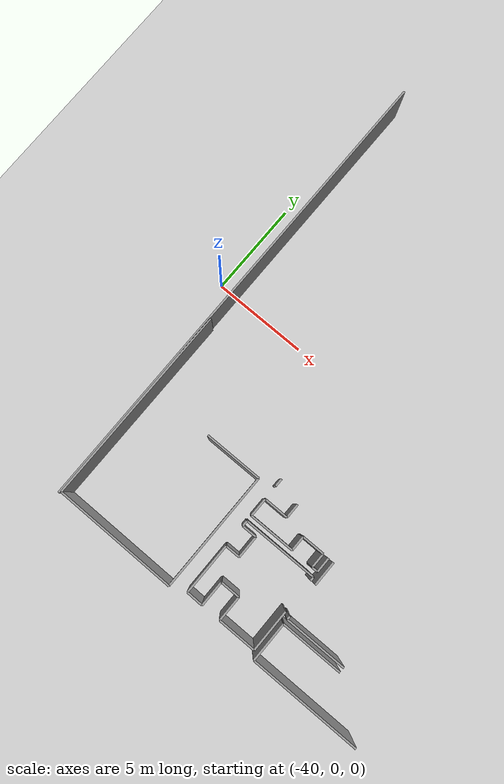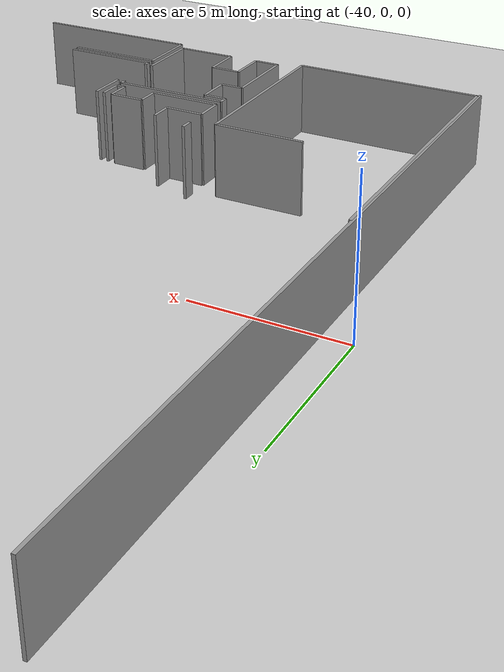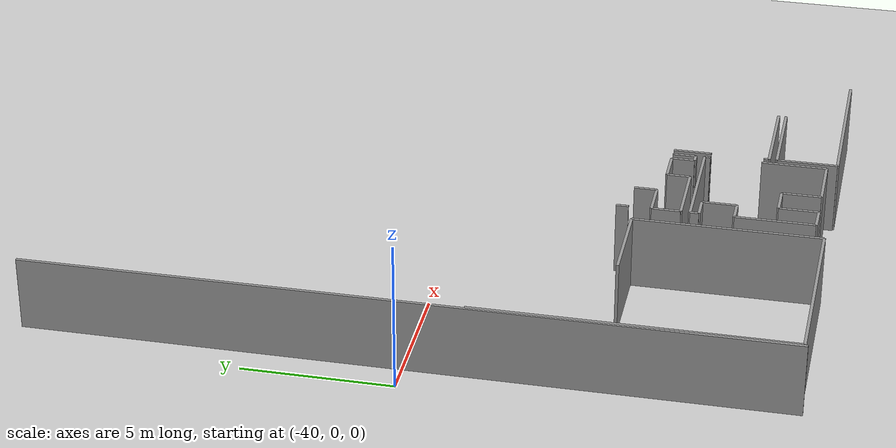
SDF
<sdf version="1.6">
 <world name="default">
  <model name="ground_plane">
   <static>1</static>
   <link name="link">
    <collision name="collision">
     <geometry><plane><normal>0 0 1</normal><size>100 100</size></plane></geometry>
     <surface><friction><ode><mu>100</mu><mu2>50</mu2></ode></friction></surface>
    </collision>
    <visual name="visual">
     <cast_shadows>0</cast_shadows>
     <geometry><plane><normal>0 0 1</normal><size>100 100</size></plane></geometry>
     <material>
      <script><uri>file://media/materials/scripts/gazebo.material</uri><name>Gazebo/Grey</name></script>
     </material>
    </visual>
   </link>
  </model>
  <model name="50052753">
   <static>1</static>
   <link name="Wall_9">
    <collision name="Wall_9_Collision">
     <geometry><box><size>10.4648522481 0.1 2.5</size></box></geometry>
     <pose>5.23242612407 0 1.25 0 0 0</pose>
    </collision>
    <visual name="Wall_9_Visual">
     <pose>5.23242612407 0 1.25 0 0 0</pose>
     <geometry><box><size>10.4648522481 0.1 2.5</size></box></geometry>
     <material>
      <script><uri>file://media/materials/scripts/gazebo.material</uri><name>Gazebo/Grey</name></script>
      <ambient>1 1 1 1</ambient>
     </material>
    </visual>
    <pose>0.0715450042179 -24.9756759671 0 0 0 1.57079632679</pose>
   </link>
   <link name="Wall_15">
    <collision name="Wall_15_Collision">
     <geometry><box><size>3.03102186309 0.1 2.5</size></box></geometry>
     <pose>1.51551093154 0 1.25 0 0 0</pose>
    </collision>
    <visual name="Wall_15_Visual">
     <pose>1.51551093154 0 1.25 0 0 0</pose>
     <geometry><box><size>3.03102186309 0.1 2.5</size></box></geometry>
     <material>
      <script><uri>file://media/materials/scripts/gazebo.material</uri><name>Gazebo/Grey</name></script>
      <ambient>1 1 1 1</ambient>
     </material>
    </visual>
    <pose>3.49581068482 -18.7504994831 0 0 0 0.0</pose>
   </link>
   <link name="Wall_16">
    <collision name="Wall_16_Collision">
     <geometry><box><size>6.25435263822 0.1 2.5</size></box></geometry>
     <pose>3.12717631911 0 1.25 0 0 0</pose>
    </collision>
    <visual name="Wall_16_Visual">
     <pose>3.12717631911 0 1.25 0 0 0</pose>
     <geometry><box><size>6.25435263822 0.1 2.5</size></box></geometry>
     <material>
      <script><uri>file://media/materials/scripts/gazebo.material</uri><name>Gazebo/Grey</name></script>
      <ambient>1 1 1 1</ambient>
     </material>
    </visual>
    <pose>6.5268325479 -18.7504994831 0 0 0 -1.57079632679</pose>
   </link>
   <link name="Wall_17">
    <collision name="Wall_17_Collision">
     <geometry><box><size>6.45535347751 0.1 2.5</size></box></geometry>
     <pose>3.22767673876 0 1.25 0 0 0</pose>
    </collision>
    <visual name="Wall_17_Visual">
     <pose>3.22767673876 0 1.25 0 0 0</pose>
     <geometry><box><size>6.45535347751 0.1 2.5</size></box></geometry>
     <material>
      <script><uri>file://media/materials/scripts/gazebo.material</uri><name>Gazebo/Grey</name></script>
      <ambient>1 1 1 1</ambient>
     </material>
    </visual>
    <pose>6.5268325479 -25.0048521213 0 0 0 3.13707295476</pose>
   </link>
   <link name="Wall_52">
    <collision name="Wall_52_Collision">
     <geometry><box><size>0.183429212942 0.1 2.5</size></box></geometry>
     <pose>0.0917146064708 0 1.25 0 0 0</pose>
    </collision>
    <visual name="Wall_52_Visual">
     <pose>0.0917146064708 0 1.25 0 0 0</pose>
     <geometry><box><size>0.183429212942 0.1 2.5</size></box></geometry>
     <material>
      <script><uri>file://media/materials/scripts/gazebo.material</uri><name>Gazebo/Grey</name></script>
      <ambient>1 1 1 1</ambient>
     </material>
    </visual>
    <pose>11.4942630801 -22.7227694513 0 0 0 1.57079632679</pose>
   </link>
   <link name="Wall_53">
    <collision name="Wall_53_Collision">
     <geometry><box><size>1.2837507849 0.1 2.5</size></box></geometry>
     <pose>0.641875392451 0 1.25 0 0 0</pose>
    </collision>
    <visual name="Wall_53_Visual">
     <pose>0.641875392451 0 1.25 0 0 0</pose>
     <geometry><box><size>1.2837507849 0.1 2.5</size></box></geometry>
     <material>
      <script><uri>file://media/materials/scripts/gazebo.material</uri><name>Gazebo/Grey</name></script>
      <ambient>1 1 1 1</ambient>
     </material>
    </visual>
    <pose>11.4942630801 -20.761243919 0 0 0 1.57079632679</pose>
   </link>
   <link name="Wall_60">
    <collision name="Wall_60_Collision">
     <geometry><box><size>3.24172783536 0.1 2.5</size></box></geometry>
     <pose>1.62086391768 0 1.25 0 0 0</pose>
    </collision>
    <visual name="Wall_60_Visual">
     <pose>1.62086391768 0 1.25 0 0 0</pose>
     <geometry><box><size>3.24172783536 0.1 2.5</size></box></geometry>
     <material>
      <script><uri>file://media/materials/scripts/gazebo.material</uri><name>Gazebo/Grey</name></script>
      <ambient>1 1 1 1</ambient>
     </material>
    </visual>
    <pose>14.7359875177 -22.7274630065 0 0 0 3.14014479704</pose>
   </link>
   <link name="Wall_68">
    <collision name="Wall_68_Collision">
     <geometry><box><size>5.79590645871 0.1 2.5</size></box></geometry>
     <pose>2.89795322936 0 1.25 0 0 0</pose>
    </collision>
    <visual name="Wall_68_Visual">
     <pose>2.89795322936 0 1.25 0 0 0</pose>
     <geometry><box><size>5.79590645871 0.1 2.5</size></box></geometry>
     <material>
      <script><uri>file://media/materials/scripts/gazebo.material</uri><name>Gazebo/Grey</name></script>
      <ambient>1 1 1 1</ambient>
     </material>
    </visual>
    <pose>11.4904574948 -25.0337745698 0 0 0 0.0</pose>
   </link>
   <link name="Wall_75">
    <collision name="Wall_75_Collision">
     <geometry><box><size>3.23119565148 0.1 2.5</size></box></geometry>
     <pose>1.61559782574 0 1.25 0 0 0</pose>
    </collision>
    <visual name="Wall_75_Visual">
     <pose>1.61559782574 0 1.25 0 0 0</pose>
     <geometry><box><size>3.23119565148 0.1 2.5</size></box></geometry>
     <material>
      <script><uri>file://media/materials/scripts/gazebo.material</uri><name>Gazebo/Grey</name></script>
      <ambient>1 1 1 1</ambient>
     </material>
    </visual>
    <pose>14.7221605576 -22.9840863107 0 0 0 3.14159265359</pose>
   </link>
   <link name="Wall_76">
    <collision name="Wall_76_Collision">
     <geometry><box><size>2.04968832194 0.1 2.5</size></box></geometry>
     <pose>1.02484416097 0 1.25 0 0 0</pose>
    </collision>
    <visual name="Wall_76_Visual">
     <pose>1.02484416097 0 1.25 0 0 0</pose>
     <geometry><box><size>2.04968832194 0.1 2.5</size></box></geometry>
     <material>
      <script><uri>file://media/materials/scripts/gazebo.material</uri><name>Gazebo/Grey</name></script>
      <ambient>1 1 1 1</ambient>
     </material>
    </visual>
    <pose>11.4909649062 -22.9840863107 0 0 0 -1.57104388218</pose>
   </link>
   <link name="Wall_77">
    <collision name="Wall_77_Collision">
     <geometry><box><size>2.66581252418 0.1 2.5</size></box></geometry>
     <pose>1.33290626209 0 1.25 0 0 0</pose>
    </collision>
    <visual name="Wall_77_Visual">
     <pose>1.33290626209 0 1.25 0 0 0</pose>
     <geometry><box><size>2.66581252418 0.1 2.5</size></box></geometry>
     <material>
      <script><uri>file://media/materials/scripts/gazebo.material</uri><name>Gazebo/Grey</name></script>
      <ambient>1 1 1 1</ambient>
     </material>
    </visual>
    <pose>7.33729537051 -24.67744493 0 0 0 1.57079632679</pose>
   </link>
   <link name="Wall_78">
    <collision name="Wall_78_Collision">
     <geometry><box><size>0.77253382214 0.1 2.5</size></box></geometry>
     <pose>0.38626691107 0 1.25 0 0 0</pose>
    </collision>
    <visual name="Wall_78_Visual">
     <pose>0.38626691107 0 1.25 0 0 0</pose>
     <geometry><box><size>0.77253382214 0.1 2.5</size></box></geometry>
     <material>
      <script><uri>file://media/materials/scripts/gazebo.material</uri><name>Gazebo/Grey</name></script>
      <ambient>1 1 1 1</ambient>
     </material>
    </visual>
    <pose>7.33729537051 -22.0116324058 0 0 0 0.0</pose>
   </link>
   <link name="Wall_79">
    <collision name="Wall_79_Collision">
     <geometry><box><size>1.15880073321 0.1 2.5</size></box></geometry>
     <pose>0.579400366605 0 1.25 0 0 0</pose>
    </collision>
    <visual name="Wall_79_Visual">
     <pose>0.579400366605 0 1.25 0 0 0</pose>
     <geometry><box><size>1.15880073321 0.1 2.5</size></box></geometry>
     <material>
      <script><uri>file://media/materials/scripts/gazebo.material</uri><name>Gazebo/Grey</name></script>
      <ambient>1 1 1 1</ambient>
     </material>
    </visual>
    <pose>8.10982919265 -22.0116324058 0 0 0 1.57079632679</pose>
   </link>
   <link name="Wall_80">
    <collision name="Wall_80_Collision">
     <geometry><box><size>0.767713414054 0.1 2.5</size></box></geometry>
     <pose>0.383856707027 0 1.25 0 0 0</pose>
    </collision>
    <visual name="Wall_80_Visual">
     <pose>0.383856707027 0 1.25 0 0 0</pose>
     <geometry><box><size>0.767713414054 0.1 2.5</size></box></geometry>
     <material>
      <script><uri>file://media/materials/scripts/gazebo.material</uri><name>Gazebo/Grey</name></script>
      <ambient>1 1 1 1</ambient>
     </material>
    </visual>
    <pose>8.10982919265 -20.8528316726 0 0 0 3.14159265359</pose>
   </link>
   <link name="Wall_81">
    <collision name="Wall_81_Collision">
     <geometry><box><size>0.295693980198 0.1 2.5</size></box></geometry>
     <pose>0.147846990099 0 1.25 0 0 0</pose>
    </collision>
    <visual name="Wall_81_Visual">
     <pose>0.147846990099 0 1.25 0 0 0</pose>
     <geometry><box><size>0.295693980198 0.1 2.5</size></box></geometry>
     <material>
      <script><uri>file://media/materials/scripts/gazebo.material</uri><name>Gazebo/Grey</name></script>
      <ambient>1 1 1 1</ambient>
     </material>
    </visual>
    <pose>7.34211577859 -20.8528316726 0 0 0 1.57079632679</pose>
   </link>
   <link name="Wall_82">
    <collision name="Wall_82_Collision">
     <geometry><box><size>3.87713033495 0.1 2.5</size></box></geometry>
     <pose>1.93856516748 0 1.25 0 0 0</pose>
    </collision>
    <visual name="Wall_82_Visual">
     <pose>1.93856516748 0 1.25 0 0 0</pose>
     <geometry><box><size>3.87713033495 0.1 2.5</size></box></geometry>
     <material>
      <script><uri>file://media/materials/scripts/gazebo.material</uri><name>Gazebo/Grey</name></script>
      <ambient>1 1 1 1</ambient>
     </material>
    </visual>
    <pose>7.34211577859 -20.5571376924 0 0 0 0.0</pose>
   </link>
   <link name="Wall_83">
    <collision name="Wall_83_Collision">
     <geometry><box><size>0.20055434693 0.1 2.5</size></box></geometry>
     <pose>0.100277173465 0 1.25 0 0 0</pose>
    </collision>
    <visual name="Wall_83_Visual">
     <pose>0.100277173465 0 1.25 0 0 0</pose>
     <geometry><box><size>0.20055434693 0.1 2.5</size></box></geometry>
     <material>
      <script><uri>file://media/materials/scripts/gazebo.material</uri><name>Gazebo/Grey</name></script>
      <ambient>1 1 1 1</ambient>
     </material>
    </visual>
    <pose>11.2192461135 -20.5571376924 0 0 0 -1.57079632679</pose>
   </link>
   <link name="Wall_84">
    <collision name="Wall_84_Collision">
     <geometry><box><size>2.18808471233 0.1 2.5</size></box></geometry>
     <pose>1.09404235616 0 1.25 0 0 0</pose>
    </collision>
    <visual name="Wall_84_Visual">
     <pose>1.09404235616 0 1.25 0 0 0</pose>
     <geometry><box><size>2.18808471233 0.1 2.5</size></box></geometry>
     <material>
      <script><uri>file://media/materials/scripts/gazebo.material</uri><name>Gazebo/Grey</name></script>
      <ambient>1 1 1 1</ambient>
     </material>
    </visual>
    <pose>11.2192461135 -22.498874181 0 0 0 -1.57079632679</pose>
   </link>
   <link name="Wall_85">
    <collision name="Wall_85_Collision">
     <geometry><box><size>1.99298503771 0.1 2.5</size></box></geometry>
     <pose>0.996492518854 0 1.25 0 0 0</pose>
    </collision>
    <visual name="Wall_85_Visual">
     <pose>0.996492518854 0 1.25 0 0 0</pose>
     <geometry><box><size>1.99298503771 0.1 2.5</size></box></geometry>
     <material>
      <script><uri>file://media/materials/scripts/gazebo.material</uri><name>Gazebo/Grey</name></script>
      <ambient>1 1 1 1</ambient>
     </material>
    </visual>
    <pose>11.2192461135 -24.6869588933 0 0 0 3.14159265359</pose>
   </link>
   <link name="Wall_86">
    <collision name="Wall_86_Collision">
     <geometry><box><size>1.31812790572 0.1 2.5</size></box></geometry>
     <pose>0.659063952861 0 1.25 0 0 0</pose>
    </collision>
    <visual name="Wall_86_Visual">
     <pose>0.659063952861 0 1.25 0 0 0</pose>
     <geometry><box><size>1.31812790572 0.1 2.5</size></box></geometry>
     <material>
      <script><uri>file://media/materials/scripts/gazebo.material</uri><name>Gazebo/Grey</name></script>
      <ambient>1 1 1 1</ambient>
     </material>
    </visual>
    <pose>9.22626107584 -24.6869588933 0 0 0 1.57079632679</pose>
   </link>
   <link name="Wall_87">
    <collision name="Wall_87_Collision">
     <geometry><box><size>1.02167280846 0.1 2.5</size></box></geometry>
     <pose>0.510836404229 0 1.25 0 0 0</pose>
    </collision>
    <visual name="Wall_87_Visual">
     <pose>0.510836404229 0 1.25 0 0 0</pose>
     <geometry><box><size>1.02167280846 0.1 2.5</size></box></geometry>
     <material>
      <script><uri>file://media/materials/scripts/gazebo.material</uri><name>Gazebo/Grey</name></script>
      <ambient>1 1 1 1</ambient>
     </material>
    </visual>
    <pose>9.22626107584 -23.3688309876 0 0 0 3.14159265359</pose>
   </link>
   <link name="Wall_88">
    <collision name="Wall_88_Collision">
     <geometry><box><size>1.32447054794 0.1 2.5</size></box></geometry>
     <pose>0.66223527397 0 1.25 0 0 0</pose>
    </collision>
    <visual name="Wall_88_Visual">
     <pose>0.66223527397 0 1.25 0 0 0</pose>
     <geometry><box><size>1.32447054794 0.1 2.5</size></box></geometry>
     <material>
      <script><uri>file://media/materials/scripts/gazebo.material</uri><name>Gazebo/Grey</name></script>
      <ambient>1 1 1 1</ambient>
     </material>
    </visual>
    <pose>8.20458826738 -23.3688309876 0 0 0 -1.57079632679</pose>
   </link>
   <link name="Wall_89">
    <collision name="Wall_89_Collision">
     <geometry><box><size>0.867437836914 0.1 2.5</size></box></geometry>
     <pose>0.433718918457 0 1.25 0 0 0</pose>
    </collision>
    <visual name="Wall_89_Visual">
     <pose>0.433718918457 0 1.25 0 0 0</pose>
     <geometry><box><size>0.867437836914 0.1 2.5</size></box></geometry>
     <material>
      <script><uri>file://media/materials/scripts/gazebo.material</uri><name>Gazebo/Grey</name></script>
      <ambient>1 1 1 1</ambient>
     </material>
    </visual>
    <pose>8.20458826738 -24.6933015356 0 0 0 3.12331181767</pose>
   </link>
   <link name="Wall_90">
    <collision name="Wall_90_Collision">
     <geometry><box><size>0.96814090814 0.1 2.5</size></box></geometry>
     <pose>0.48407045407 0 1.25 0 0 0</pose>
    </collision>
    <visual name="Wall_90_Visual">
     <pose>0.48407045407 0 1.25 0 0 0</pose>
     <geometry><box><size>0.96814090814 0.1 2.5</size></box></geometry>
     <material>
      <script><uri>file://media/materials/scripts/gazebo.material</uri><name>Gazebo/Grey</name></script>
      <ambient>1 1 1 1</ambient>
     </material>
    </visual>
    <pose>7.34680933383 -20.2519297489 0 0 0 1.57079632679</pose>
   </link>
   <link name="Wall_91">
    <collision name="Wall_91_Collision">
     <geometry><box><size>1.27816925975 0.1 2.5</size></box></geometry>
     <pose>0.639084629875 0 1.25 0 0 0</pose>
    </collision>
    <visual name="Wall_91_Visual">
     <pose>0.639084629875 0 1.25 0 0 0</pose>
     <geometry><box><size>1.27816925975 0.1 2.5</size></box></geometry>
     <material>
      <script><uri>file://media/materials/scripts/gazebo.material</uri><name>Gazebo/Grey</name></script>
      <ambient>1 1 1 1</ambient>
     </material>
    </visual>
    <pose>7.34680933383 -19.2837888408 0 0 0 0.0</pose>
   </link>
   <link name="Wall_92">
    <collision name="Wall_92_Collision">
     <geometry><box><size>0.753379042642 0.1 2.5</size></box></geometry>
     <pose>0.376689521321 0 1.25 0 0 0</pose>
    </collision>
    <visual name="Wall_92_Visual">
     <pose>0.376689521321 0 1.25 0 0 0</pose>
     <geometry><box><size>0.753379042642 0.1 2.5</size></box></geometry>
     <material>
      <script><uri>file://media/materials/scripts/gazebo.material</uri><name>Gazebo/Grey</name></script>
      <ambient>1 1 1 1</ambient>
     </material>
    </visual>
    <pose>8.62497859358 -19.2837888408 0 0 0 1.57079632679</pose>
   </link>
   <link name="Wall_94">
    <collision name="Wall_94_Collision">
     <geometry><box><size>0.414935653895 0.1 2.5</size></box></geometry>
     <pose>0.207467826947 0 1.25 0 0 0</pose>
    </collision>
    <visual name="Wall_94_Visual">
     <pose>0.207467826947 0 1.25 0 0 0</pose>
     <geometry><box><size>0.414935653895 0.1 2.5</size></box></geometry>
     <material>
      <script><uri>file://media/materials/scripts/gazebo.material</uri><name>Gazebo/Grey</name></script>
      <ambient>1 1 1 1</ambient>
     </material>
    </visual>
    <pose>7.33729537051 -18.5304097981 0 0 0 1.57079632679</pose>
   </link>
   <link name="Wall_97">
    <collision name="Wall_97_Collision">
     <geometry><box><size>0.782174638311 0.1 2.5</size></box></geometry>
     <pose>0.391087319155 0 1.25 0 0 0</pose>
    </collision>
    <visual name="Wall_97_Visual">
     <pose>0.391087319155 0 1.25 0 0 0</pose>
     <geometry><box><size>0.782174638311 0.1 2.5</size></box></geometry>
     <material>
      <script><uri>file://media/materials/scripts/gazebo.material</uri><name>Gazebo/Grey</name></script>
      <ambient>1 1 1 1</ambient>
     </material>
    </visual>
    <pose>11.2049117421 -19.4745755187 0 0 0 -1.57079632679</pose>
   </link>
   <link name="Wall_98">
    <collision name="Wall_98_Collision">
     <geometry><box><size>0.305207943525 0.1 2.5</size></box></geometry>
     <pose>0.152603971763 0 1.25 0 0 0</pose>
    </collision>
    <visual name="Wall_98_Visual">
     <pose>0.152603971763 0 1.25 0 0 0</pose>
     <geometry><box><size>0.305207943525 0.1 2.5</size></box></geometry>
     <material>
      <script><uri>file://media/materials/scripts/gazebo.material</uri><name>Gazebo/Grey</name></script>
      <ambient>1 1 1 1</ambient>
     </material>
    </visual>
    <pose>11.2049117421 -20.256750157 0 0 0 3.14159265359</pose>
   </link>
   <link name="Wall_99">
    <collision name="Wall_99_Collision">
     <geometry><box><size>0.777354230225 0.1 2.5</size></box></geometry>
     <pose>0.388677115113 0 1.25 0 0 0</pose>
    </collision>
    <visual name="Wall_99_Visual">
     <pose>0.388677115113 0 1.25 0 0 0</pose>
     <geometry><box><size>0.777354230225 0.1 2.5</size></box></geometry>
     <material>
      <script><uri>file://media/materials/scripts/gazebo.material</uri><name>Gazebo/Grey</name></script>
      <ambient>1 1 1 1</ambient>
     </material>
    </visual>
    <pose>10.8997037986 -20.256750157 0 0 0 1.57079632679</pose>
   </link>
   <link name="Wall_100">
    <collision name="Wall_100_Collision">
     <geometry><box><size>1.16844154938 0.1 2.5</size></box></geometry>
     <pose>0.58422077469 0 1.25 0 0 0</pose>
    </collision>
    <visual name="Wall_100_Visual">
     <pose>0.58422077469 0 1.25 0 0 0</pose>
     <geometry><box><size>1.16844154938 0.1 2.5</size></box></geometry>
     <material>
      <script><uri>file://media/materials/scripts/gazebo.material</uri><name>Gazebo/Grey</name></script>
      <ambient>1 1 1 1</ambient>
     </material>
    </visual>
    <pose>10.8997037986 -19.4793959268 0 0 0 3.14159265359</pose>
   </link>
   <link name="Wall_101">
    <collision name="Wall_101_Collision">
     <geometry><box><size>0.77253382214 0.1 2.5</size></box></geometry>
     <pose>0.38626691107 0 1.25 0 0 0</pose>
    </collision>
    <visual name="Wall_101_Visual">
     <pose>0.38626691107 0 1.25 0 0 0</pose>
     <geometry><box><size>0.77253382214 0.1 2.5</size></box></geometry>
     <material>
      <script><uri>file://media/materials/scripts/gazebo.material</uri><name>Gazebo/Grey</name></script>
      <ambient>1 1 1 1</ambient>
     </material>
    </visual>
    <pose>9.73126224923 -19.4793959268 0 0 0 -1.57079632679</pose>
   </link>
   <link name="Wall_102">
    <collision name="Wall_102_Collision">
     <geometry><box><size>2.3844529154 0.1 2.5</size></box></geometry>
     <pose>1.1922264577 0 1.25 0 0 0</pose>
    </collision>
    <visual name="Wall_102_Visual">
     <pose>1.1922264577 0 1.25 0 0 0</pose>
     <geometry><box><size>2.3844529154 0.1 2.5</size></box></geometry>
     <material>
      <script><uri>file://media/materials/scripts/gazebo.material</uri><name>Gazebo/Grey</name></script>
      <ambient>1 1 1 1</ambient>
     </material>
    </visual>
    <pose>9.73126224923 -20.2519297489 0 0 0 3.14159265359</pose>
   </link>
   <link name="Wall_270">
    <collision name="Wall_270_Collision">
     <geometry><box><size>25.0812175336 0.1 2.5</size></box></geometry>
     <pose>12.5406087668 0 1.25 0 0 0</pose>
    </collision>
    <visual name="Wall_270_Visual">
     <pose>12.5406087668 0 1.25 0 0 0</pose>
     <geometry><box><size>25.0812175336 0.1 2.5</size></box></geometry>
     <material>
      <script><uri>file://media/materials/scripts/gazebo.material</uri><name>Gazebo/Grey</name></script>
      <ambient>1 1 1 1</ambient>
     </material>
    </visual>
    <pose>0.0 -25.0812175336 0 0 0 1.57079632679</pose>
   </link>
   <pose>-39.0 12.5312175336 0 0 0 0</pose>
  </model>
 </world>
</sdf>
